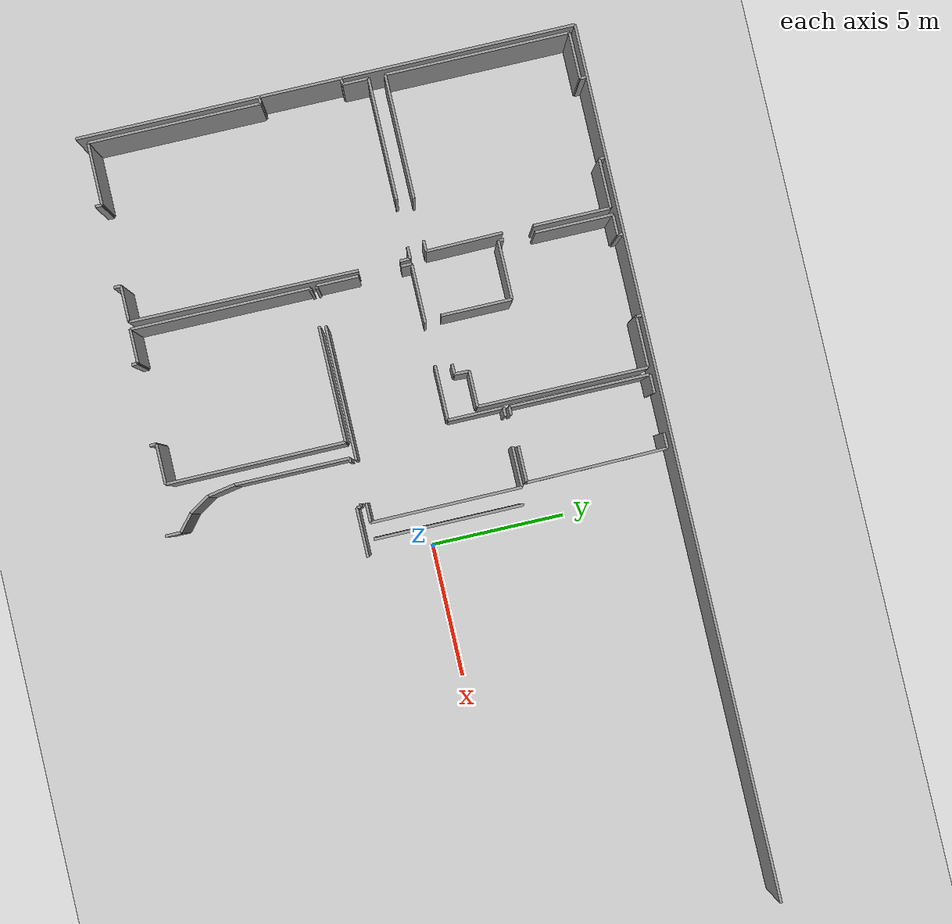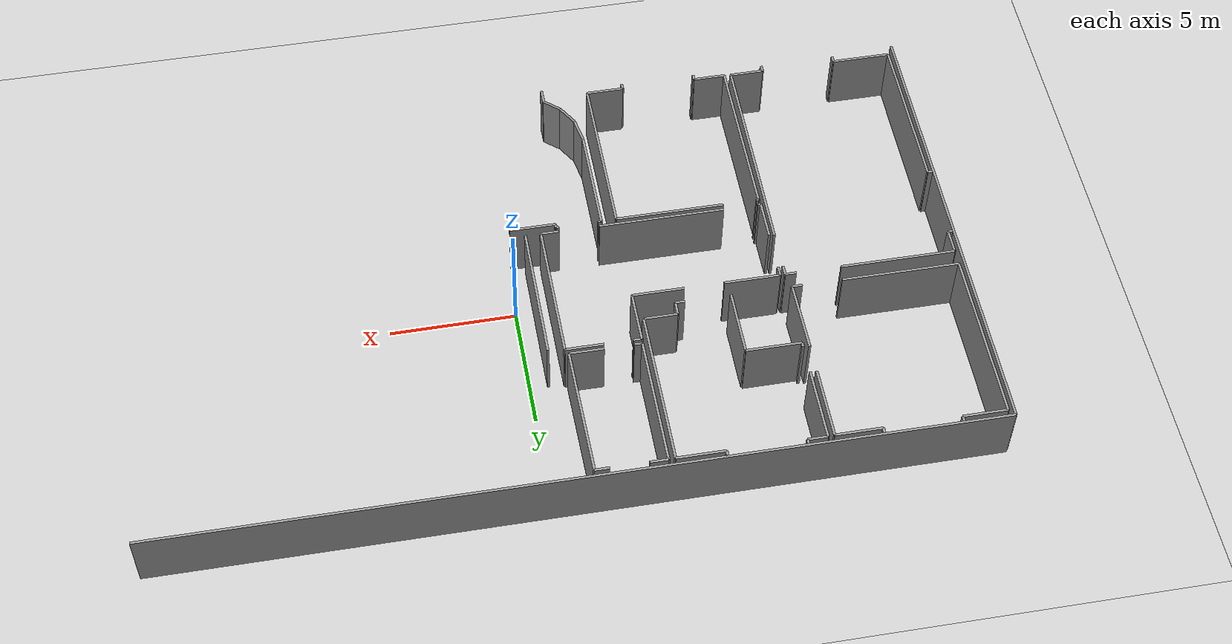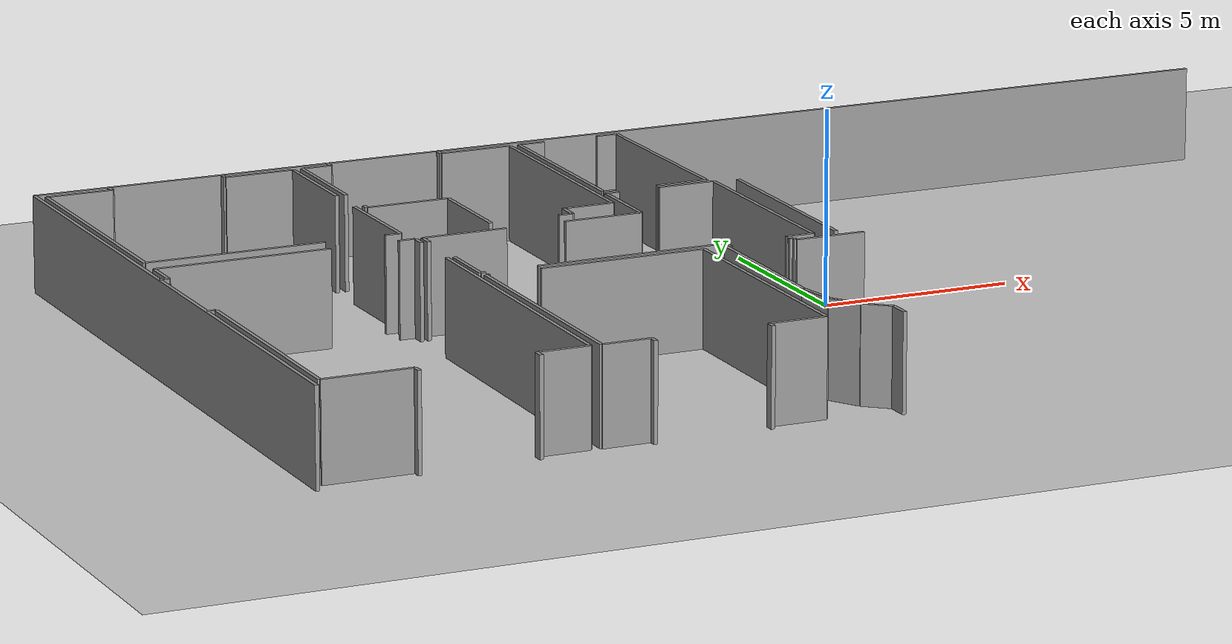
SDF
<sdf version="1.6">
 <world name="default">
  <model name="ground_plane">
   <static>1</static>
   <link name="link">
    <collision name="collision">
     <geometry><plane><normal>0 0 1</normal><size>100 100</size></plane></geometry>
     <surface><friction><ode><mu>100</mu><mu2>50</mu2></ode></friction></surface>
    </collision>
    <visual name="visual">
     <cast_shadows>0</cast_shadows>
     <geometry><plane><normal>0 0 1</normal><size>100 100</size></plane></geometry>
     <material>
      <script><uri>file://media/materials/scripts/gazebo.material</uri><name>Gazebo/Grey</name></script>
     </material>
    </visual>
   </link>
  </model>
  <model name="0510034861_A-40">
   <static>1</static>
   <link name="Wall_0">
    <collision name="Wall_0_Collision">
     <geometry><box><size>0.40639932986 0.1 2.5</size></box></geometry>
     <pose>0.20319966493 0 1.25 0 0 0</pose>
    </collision>
    <visual name="Wall_0_Visual">
     <pose>0.20319966493 0 1.25 0 0 0</pose>
     <geometry><box><size>0.40639932986 0.1 2.5</size></box></geometry>
     <material>
      <script><uri>file://media/materials/scripts/gazebo.material</uri><name>Gazebo/Grey</name></script>
      <ambient>1 1 1 1</ambient>
     </material>
    </visual>
    <pose>6.86106651267 -7.14993749167 0 0 0 3.14159265359</pose>
   </link>
   <link name="Wall_1">
    <collision name="Wall_1_Collision">
     <geometry><box><size>4.65658495104 0.1 2.5</size></box></geometry>
     <pose>2.32829247552 0 1.25 0 0 0</pose>
    </collision>
    <visual name="Wall_1_Visual">
     <pose>2.32829247552 0 1.25 0 0 0</pose>
     <geometry><box><size>4.65658495104 0.1 2.5</size></box></geometry>
     <material>
      <script><uri>file://media/materials/scripts/gazebo.material</uri><name>Gazebo/Grey</name></script>
      <ambient>1 1 1 1</ambient>
     </material>
    </visual>
    <pose>4.88224953833 -7.14993749167 0 0 0 3.14159265359</pose>
   </link>
   <link name="Wall_2">
    <collision name="Wall_2_Collision">
     <geometry><box><size>6.88949669689 0.1 2.5</size></box></geometry>
     <pose>3.44474834845 0 1.25 0 0 0</pose>
    </collision>
    <visual name="Wall_2_Visual">
     <pose>3.44474834845 0 1.25 0 0 0</pose>
     <geometry><box><size>6.88949669689 0.1 2.5</size></box></geometry>
     <material>
      <script><uri>file://media/materials/scripts/gazebo.material</uri><name>Gazebo/Grey</name></script>
      <ambient>1 1 1 1</ambient>
     </material>
    </visual>
    <pose>0.225664587286 -7.14993749167 0 0 0 1.57079632679</pose>
   </link>
   <link name="Wall_3">
    <collision name="Wall_3_Collision">
     <geometry><box><size>1.7336066354 0.1 2.5</size></box></geometry>
     <pose>0.866803317701 0 1.25 0 0 0</pose>
    </collision>
    <visual name="Wall_3_Visual">
     <pose>0.866803317701 0 1.25 0 0 0</pose>
     <geometry><box><size>1.7336066354 0.1 2.5</size></box></geometry>
     <material>
      <script><uri>file://media/materials/scripts/gazebo.material</uri><name>Gazebo/Grey</name></script>
      <ambient>1 1 1 1</ambient>
     </material>
    </visual>
    <pose>0.225664587286 -0.260440794776 0 0 0 0.0</pose>
   </link>
   <link name="Wall_4">
    <collision name="Wall_4_Collision">
     <geometry><box><size>0.222110814258 0.1 2.5</size></box></geometry>
     <pose>0.111055407129 0 1.25 0 0 0</pose>
    </collision>
    <visual name="Wall_4_Visual">
     <pose>0.111055407129 0 1.25 0 0 0</pose>
     <geometry><box><size>0.222110814258 0.1 2.5</size></box></geometry>
     <material>
      <script><uri>file://media/materials/scripts/gazebo.material</uri><name>Gazebo/Grey</name></script>
      <ambient>1 1 1 1</ambient>
     </material>
    </visual>
    <pose>1.95927122269 -0.260440794776 0 0 0 1.57079632679</pose>
   </link>
   <link name="Wall_5">
    <collision name="Wall_5_Collision">
     <geometry><box><size>0.214114824945 0.1 2.5</size></box></geometry>
     <pose>0.107057412472 0 1.25 0 0 0</pose>
    </collision>
    <visual name="Wall_5_Visual">
     <pose>0.107057412472 0 1.25 0 0 0</pose>
     <geometry><box><size>0.214114824945 0.1 2.5</size></box></geometry>
     <material>
      <script><uri>file://media/materials/scripts/gazebo.material</uri><name>Gazebo/Grey</name></script>
      <ambient>1 1 1 1</ambient>
     </material>
    </visual>
    <pose>4.98937041103 -0.0383299805177 0 0 0 -1.57079632679</pose>
   </link>
   <link name="Wall_6">
    <collision name="Wall_6_Collision">
     <geometry><box><size>1.8381890988 0.1 2.5</size></box></geometry>
     <pose>0.919094549401 0 1.25 0 0 0</pose>
    </collision>
    <visual name="Wall_6_Visual">
     <pose>0.919094549401 0 1.25 0 0 0</pose>
     <geometry><box><size>1.8381890988 0.1 2.5</size></box></geometry>
     <material>
      <script><uri>file://media/materials/scripts/gazebo.material</uri><name>Gazebo/Grey</name></script>
      <ambient>1 1 1 1</ambient>
     </material>
    </visual>
    <pose>4.98937041103 -0.252444805463 0 0 0 0.0</pose>
   </link>
   <link name="Wall_7">
    <collision name="Wall_7_Collision">
     <geometry><box><size>2.89162896071 0.1 2.5</size></box></geometry>
     <pose>1.44581448036 0 1.25 0 0 0</pose>
    </collision>
    <visual name="Wall_7_Visual">
     <pose>1.44581448036 0 1.25 0 0 0</pose>
     <geometry><box><size>2.89162896071 0.1 2.5</size></box></geometry>
     <material>
      <script><uri>file://media/materials/scripts/gazebo.material</uri><name>Gazebo/Grey</name></script>
      <ambient>1 1 1 1</ambient>
     </material>
    </visual>
    <pose>6.82755950983 -0.252444805463 0 0 0 -1.57079632679</pose>
   </link>
   <link name="Wall_8">
    <collision name="Wall_8_Collision">
     <geometry><box><size>2.85869909492 0.1 2.5</size></box></geometry>
     <pose>1.42934954746 0 1.25 0 0 0</pose>
    </collision>
    <visual name="Wall_8_Visual">
     <pose>1.42934954746 0 1.25 0 0 0</pose>
     <geometry><box><size>2.85869909492 0.1 2.5</size></box></geometry>
     <material>
      <script><uri>file://media/materials/scripts/gazebo.material</uri><name>Gazebo/Grey</name></script>
      <ambient>1 1 1 1</ambient>
     </material>
    </visual>
    <pose>6.82755950983 -4.2914347724 0 0 0 -1.55907499167</pose>
   </link>
   <link name="Wall_9">
    <collision name="Wall_9_Collision">
     <geometry><box><size>0.364134814918 0.1 2.5</size></box></geometry>
     <pose>0.182067407459 0 1.25 0 0 0</pose>
    </collision>
    <visual name="Wall_9_Visual">
     <pose>0.182067407459 0 1.25 0 0 0</pose>
     <geometry><box><size>0.364134814918 0.1 2.5</size></box></geometry>
     <material>
      <script><uri>file://media/materials/scripts/gazebo.material</uri><name>Gazebo/Grey</name></script>
      <ambient>1 1 1 1</ambient>
     </material>
    </visual>
    <pose>11.4422607073 -7.14993749167 0 0 0 3.14159265359</pose>
   </link>
   <link name="Wall_10">
    <collision name="Wall_10_Collision">
     <geometry><box><size>2.64603786037 0.1 2.5</size></box></geometry>
     <pose>1.32301893019 0 1.25 0 0 0</pose>
    </collision>
    <visual name="Wall_10_Visual">
     <pose>1.32301893019 0 1.25 0 0 0</pose>
     <geometry><box><size>2.64603786037 0.1 2.5</size></box></geometry>
     <material>
      <script><uri>file://media/materials/scripts/gazebo.material</uri><name>Gazebo/Grey</name></script>
      <ambient>1 1 1 1</ambient>
     </material>
    </visual>
    <pose>9.26278247736 -7.14993749167 0 0 0 1.57079632679</pose>
   </link>
   <link name="Wall_11">
    <collision name="Wall_11_Collision">
     <geometry><box><size>2.18569733277 0.1 2.5</size></box></geometry>
     <pose>1.09284866638 0 1.25 0 0 0</pose>
    </collision>
    <visual name="Wall_11_Visual">
     <pose>1.09284866638 0 1.25 0 0 0</pose>
     <geometry><box><size>2.18569733277 0.1 2.5</size></box></geometry>
     <material>
      <script><uri>file://media/materials/scripts/gazebo.material</uri><name>Gazebo/Grey</name></script>
      <ambient>1 1 1 1</ambient>
     </material>
    </visual>
    <pose>9.26278247736 -4.5038996313 0 0 0 3.14159265359</pose>
   </link>
   <link name="Wall_12">
    <collision name="Wall_12_Collision">
     <geometry><box><size>0.195584437013 0.1 2.5</size></box></geometry>
     <pose>0.0977922185063 0 1.25 0 0 0</pose>
    </collision>
    <visual name="Wall_12_Visual">
     <pose>0.0977922185063 0 1.25 0 0 0</pose>
     <geometry><box><size>0.195584437013 0.1 2.5</size></box></geometry>
     <material>
      <script><uri>file://media/materials/scripts/gazebo.material</uri><name>Gazebo/Grey</name></script>
      <ambient>1 1 1 1</ambient>
     </material>
    </visual>
    <pose>7.07708514459 -4.5038996313 0 0 0 1.57079632679</pose>
   </link>
   <link name="Wall_13">
    <collision name="Wall_13_Collision">
     <geometry><box><size>2.91092087144 0.1 2.5</size></box></geometry>
     <pose>1.45546043572 0 1.25 0 0 0</pose>
    </collision>
    <visual name="Wall_13_Visual">
     <pose>1.45546043572 0 1.25 0 0 0</pose>
     <geometry><box><size>2.91092087144 0.1 2.5</size></box></geometry>
     <material>
      <script><uri>file://media/materials/scripts/gazebo.material</uri><name>Gazebo/Grey</name></script>
      <ambient>1 1 1 1</ambient>
     </material>
    </visual>
    <pose>7.07708514459 -3.1414084364 0 0 0 1.57079632679</pose>
   </link>
   <link name="Wall_14">
    <collision name="Wall_14_Collision">
     <geometry><box><size>0.771041826639 0.1 2.5</size></box></geometry>
     <pose>0.38552091332 0 1.25 0 0 0</pose>
    </collision>
    <visual name="Wall_14_Visual">
     <pose>0.38552091332 0 1.25 0 0 0</pose>
     <geometry><box><size>0.771041826639 0.1 2.5</size></box></geometry>
     <material>
      <script><uri>file://media/materials/scripts/gazebo.material</uri><name>Gazebo/Grey</name></script>
      <ambient>1 1 1 1</ambient>
     </material>
    </visual>
    <pose>7.07708514459 -0.230487564967 0 0 0 0.0</pose>
   </link>
   <link name="Wall_15">
    <collision name="Wall_15_Collision">
     <geometry><box><size>0.230487564967 0.1 2.5</size></box></geometry>
     <pose>0.115243782484 0 1.25 0 0 0</pose>
    </collision>
    <visual name="Wall_15_Visual">
     <pose>0.115243782484 0 1.25 0 0 0</pose>
     <geometry><box><size>0.230487564967 0.1 2.5</size></box></geometry>
     <material>
      <script><uri>file://media/materials/scripts/gazebo.material</uri><name>Gazebo/Grey</name></script>
      <ambient>1 1 1 1</ambient>
     </material>
    </visual>
    <pose>7.84812697123 -0.230487564967 0 0 0 1.57079632679</pose>
   </link>
   <link name="Wall_16">
    <collision name="Wall_16_Collision">
     <geometry><box><size>0.248129509643 0.1 2.5</size></box></geometry>
     <pose>0.124064754821 0 1.25 0 0 0</pose>
    </collision>
    <visual name="Wall_16_Visual">
     <pose>0.124064754821 0 1.25 0 0 0</pose>
     <geometry><box><size>0.248129509643 0.1 2.5</size></box></geometry>
     <material>
      <script><uri>file://media/materials/scripts/gazebo.material</uri><name>Gazebo/Grey</name></script>
      <ambient>1 1 1 1</ambient>
     </material>
    </visual>
    <pose>10.8825414554 -0.0 0 0 0 -1.57079632679</pose>
   </link>
   <link name="Wall_17">
    <collision name="Wall_17_Collision">
     <geometry><box><size>1.90380697936 0.1 2.5</size></box></geometry>
     <pose>0.951903489678 0 1.25 0 0 0</pose>
    </collision>
    <visual name="Wall_17_Visual">
     <pose>0.951903489678 0 1.25 0 0 0</pose>
     <geometry><box><size>1.90380697936 0.1 2.5</size></box></geometry>
     <material>
      <script><uri>file://media/materials/scripts/gazebo.material</uri><name>Gazebo/Grey</name></script>
      <ambient>1 1 1 1</ambient>
     </material>
    </visual>
    <pose>10.8825414554 -0.248129509643 0 0 0 0.0</pose>
   </link>
   <link name="Wall_18">
    <collision name="Wall_18_Collision">
     <geometry><box><size>6.35541537895 0.1 2.5</size></box></geometry>
     <pose>3.17770768948 0 1.25 0 0 0</pose>
    </collision>
    <visual name="Wall_18_Visual">
     <pose>3.17770768948 0 1.25 0 0 0</pose>
     <geometry><box><size>6.35541537895 0.1 2.5</size></box></geometry>
     <material>
      <script><uri>file://media/materials/scripts/gazebo.material</uri><name>Gazebo/Grey</name></script>
      <ambient>1 1 1 1</ambient>
     </material>
    </visual>
    <pose>12.7863484348 -0.248129509643 0 0 0 -1.57079632679</pose>
   </link>
   <link name="Wall_19">
    <collision name="Wall_19_Collision">
     <geometry><box><size>1.32644578275 0.1 2.5</size></box></geometry>
     <pose>0.663222891375 0 1.25 0 0 0</pose>
    </collision>
    <visual name="Wall_19_Visual">
     <pose>0.663222891375 0 1.25 0 0 0</pose>
     <geometry><box><size>1.32644578275 0.1 2.5</size></box></geometry>
     <material>
      <script><uri>file://media/materials/scripts/gazebo.material</uri><name>Gazebo/Grey</name></script>
      <ambient>1 1 1 1</ambient>
     </material>
    </visual>
    <pose>12.7863484348 -6.6035448886 0 0 0 3.14159265359</pose>
   </link>
   <link name="Wall_20">
    <collision name="Wall_20_Collision">
     <geometry><box><size>0.546677340766 0.1 2.5</size></box></geometry>
     <pose>0.273338670383 0 1.25 0 0 0</pose>
    </collision>
    <visual name="Wall_20_Visual">
     <pose>0.273338670383 0 1.25 0 0 0</pose>
     <geometry><box><size>0.546677340766 0.1 2.5</size></box></geometry>
     <material>
      <script><uri>file://media/materials/scripts/gazebo.material</uri><name>Gazebo/Grey</name></script>
      <ambient>1 1 1 1</ambient>
     </material>
    </visual>
    <pose>11.459902652 -6.6035448886 0 0 0 -1.60307315069</pose>
   </link>
   <link name="Wall_21">
    <collision name="Wall_21_Collision">
     <geometry><box><size>1.3555105693 0.1 2.5</size></box></geometry>
     <pose>0.677755284651 0 1.25 0 0 0</pose>
    </collision>
    <visual name="Wall_21_Visual">
     <pose>0.677755284651 0 1.25 0 0 0</pose>
     <geometry><box><size>1.3555105693 0.1 2.5</size></box></geometry>
     <material>
      <script><uri>file://media/materials/scripts/gazebo.material</uri><name>Gazebo/Grey</name></script>
      <ambient>1 1 1 1</ambient>
     </material>
    </visual>
    <pose>15.8645504794 -5.48499482799 0 0 0 3.14159265359</pose>
   </link>
   <link name="Wall_22">
    <collision name="Wall_22_Collision">
     <geometry><box><size>0.316793481365 0.1 2.5</size></box></geometry>
     <pose>0.158396740682 0 1.25 0 0 0</pose>
    </collision>
    <visual name="Wall_22_Visual">
     <pose>0.158396740682 0 1.25 0 0 0</pose>
     <geometry><box><size>0.316793481365 0.1 2.5</size></box></geometry>
     <material>
      <script><uri>file://media/materials/scripts/gazebo.material</uri><name>Gazebo/Grey</name></script>
      <ambient>1 1 1 1</ambient>
     </material>
    </visual>
    <pose>13.3590135741 -5.48499482799 0 0 0 3.14159265359</pose>
   </link>
   <link name="Wall_23">
    <collision name="Wall_23_Collision">
     <geometry><box><size>5.2447343872 0.1 2.5</size></box></geometry>
     <pose>2.6223671936 0 1.25 0 0 0</pose>
    </collision>
    <visual name="Wall_23_Visual">
     <pose>2.6223671936 0 1.25 0 0 0</pose>
     <geometry><box><size>5.2447343872 0.1 2.5</size></box></geometry>
     <material>
      <script><uri>file://media/materials/scripts/gazebo.material</uri><name>Gazebo/Grey</name></script>
      <ambient>1 1 1 1</ambient>
     </material>
    </visual>
    <pose>13.0422200928 -5.48499482799 0 0 0 1.57079632679</pose>
   </link>
   <link name="Wall_24">
    <collision name="Wall_24_Collision">
     <geometry><box><size>0.703266298174 0.1 2.5</size></box></geometry>
     <pose>0.351633149087 0 1.25 0 0 0</pose>
    </collision>
    <visual name="Wall_24_Visual">
     <pose>0.351633149087 0 1.25 0 0 0</pose>
     <geometry><box><size>0.703266298174 0.1 2.5</size></box></geometry>
     <material>
      <script><uri>file://media/materials/scripts/gazebo.material</uri><name>Gazebo/Grey</name></script>
      <ambient>1 1 1 1</ambient>
     </material>
    </visual>
    <pose>13.0422200928 -0.240260440795 0 0 0 0.0</pose>
   </link>
   <link name="Wall_25">
    <collision name="Wall_25_Collision">
     <geometry><box><size>0.572538218925 0.1 2.5</size></box></geometry>
     <pose>0.286269109463 0 1.25 0 0 0</pose>
    </collision>
    <visual name="Wall_25_Visual">
     <pose>0.286269109463 0 1.25 0 0 0</pose>
     <geometry><box><size>0.572538218925 0.1 2.5</size></box></geometry>
     <material>
      <script><uri>file://media/materials/scripts/gazebo.material</uri><name>Gazebo/Grey</name></script>
      <ambient>1 1 1 1</ambient>
     </material>
    </visual>
    <pose>15.2197945158 -0.240260440795 0 0 0 0.0</pose>
   </link>
   <link name="Wall_26">
    <collision name="Wall_26_Collision">
     <geometry><box><size>5.24523156733 0.1 2.5</size></box></geometry>
     <pose>2.62261578366 0 1.25 0 0 0</pose>
    </collision>
    <visual name="Wall_26_Visual">
     <pose>2.62261578366 0 1.25 0 0 0</pose>
     <geometry><box><size>5.24523156733 0.1 2.5</size></box></geometry>
     <material>
      <script><uri>file://media/materials/scripts/gazebo.material</uri><name>Gazebo/Grey</name></script>
      <ambient>1 1 1 1</ambient>
     </material>
    </visual>
    <pose>15.7923327347 -0.240260440795 0 0 0 -1.55702762551</pose>
   </link>
   <link name="Wall_27">
    <collision name="Wall_27_Collision">
     <geometry><box><size>1.34078779533 0.1 2.5</size></box></geometry>
     <pose>0.670393897664 0 1.25 0 0 0</pose>
    </collision>
    <visual name="Wall_27_Visual">
     <pose>0.670393897664 0 1.25 0 0 0</pose>
     <geometry><box><size>1.34078779533 0.1 2.5</size></box></geometry>
     <material>
      <script><uri>file://media/materials/scripts/gazebo.material</uri><name>Gazebo/Grey</name></script>
      <ambient>1 1 1 1</ambient>
     </material>
    </visual>
    <pose>6.9447070993 -18.2281903045 0 0 0 3.14159265359</pose>
   </link>
   <link name="Wall_28">
    <collision name="Wall_28_Collision">
     <geometry><box><size>0.268817545485 0.1 2.5</size></box></geometry>
     <pose>0.134408772743 0 1.25 0 0 0</pose>
    </collision>
    <visual name="Wall_28_Visual">
     <pose>0.134408772743 0 1.25 0 0 0</pose>
     <geometry><box><size>0.268817545485 0.1 2.5</size></box></geometry>
     <material>
      <script><uri>file://media/materials/scripts/gazebo.material</uri><name>Gazebo/Grey</name></script>
      <ambient>1 1 1 1</ambient>
     </material>
    </visual>
    <pose>5.60391930397 -18.2281903045 0 0 0 -1.57079632679</pose>
   </link>
   <link name="Wall_29">
    <collision name="Wall_29_Collision">
     <geometry><box><size>0.24686030499 0.1 2.5</size></box></geometry>
     <pose>0.123430152495 0 1.25 0 0 0</pose>
    </collision>
    <visual name="Wall_29_Visual">
     <pose>0.123430152495 0 1.25 0 0 0</pose>
     <geometry><box><size>0.24686030499 0.1 2.5</size></box></geometry>
     <material>
      <script><uri>file://media/materials/scripts/gazebo.material</uri><name>Gazebo/Grey</name></script>
      <ambient>1 1 1 1</ambient>
     </material>
    </visual>
    <pose>2.57508932028 -18.49700785 0 0 0 1.57079632679</pose>
   </link>
   <link name="Wall_30">
    <collision name="Wall_30_Collision">
     <geometry><box><size>2.33749420925 0.1 2.5</size></box></geometry>
     <pose>1.16874710463 0 1.25 0 0 0</pose>
    </collision>
    <visual name="Wall_30_Visual">
     <pose>1.16874710463 0 1.25 0 0 0</pose>
     <geometry><box><size>2.33749420925 0.1 2.5</size></box></geometry>
     <material>
      <script><uri>file://media/materials/scripts/gazebo.material</uri><name>Gazebo/Grey</name></script>
      <ambient>1 1 1 1</ambient>
     </material>
    </visual>
    <pose>2.57508932028 -18.250147545 0 0 0 3.14159265359</pose>
   </link>
   <link name="Wall_31">
    <collision name="Wall_31_Collision">
     <geometry><box><size>6.43689831767 0.1 2.5</size></box></geometry>
     <pose>3.21844915883 0 1.25 0 0 0</pose>
    </collision>
    <visual name="Wall_31_Visual">
     <pose>3.21844915883 0 1.25 0 0 0</pose>
     <geometry><box><size>6.43689831767 0.1 2.5</size></box></geometry>
     <material>
      <script><uri>file://media/materials/scripts/gazebo.material</uri><name>Gazebo/Grey</name></script>
      <ambient>1 1 1 1</ambient>
     </material>
    </visual>
    <pose>0.237595111024 -18.250147545 0 0 0 1.57079632679</pose>
   </link>
   <link name="Wall_32">
    <collision name="Wall_32_Collision">
     <geometry><box><size>0.237595111024 0.1 2.5</size></box></geometry>
     <pose>0.118797555512 0 1.25 0 0 0</pose>
    </collision>
    <visual name="Wall_32_Visual">
     <pose>0.118797555512 0 1.25 0 0 0</pose>
     <geometry><box><size>0.237595111024 0.1 2.5</size></box></geometry>
     <material>
      <script><uri>file://media/materials/scripts/gazebo.material</uri><name>Gazebo/Grey</name></script>
      <ambient>1 1 1 1</ambient>
     </material>
    </visual>
    <pose>0.237595111024 -11.8132492274 0 0 0 3.14159265359</pose>
   </link>
   <link name="Wall_33">
    <collision name="Wall_33_Collision">
     <geometry><box><size>0.224903064495 0.1 2.5</size></box></geometry>
     <pose>0.112451532247 0 1.25 0 0 0</pose>
    </collision>
    <visual name="Wall_33_Visual">
     <pose>0.112451532247 0 1.25 0 0 0</pose>
     <geometry><box><size>0.224903064495 0.1 2.5</size></box></geometry>
     <material>
      <script><uri>file://media/materials/scripts/gazebo.material</uri><name>Gazebo/Grey</name></script>
      <ambient>1 1 1 1</ambient>
     </material>
    </visual>
    <pose>0.0 -8.74355085386 0 0 0 0.0</pose>
   </link>
   <link name="Wall_34">
    <collision name="Wall_34_Collision">
     <geometry><box><size>0.97233768459 0.1 2.5</size></box></geometry>
     <pose>0.486168842295 0 1.25 0 0 0</pose>
    </collision>
    <visual name="Wall_34_Visual">
     <pose>0.486168842295 0 1.25 0 0 0</pose>
     <geometry><box><size>0.97233768459 0.1 2.5</size></box></geometry>
     <material>
      <script><uri>file://media/materials/scripts/gazebo.material</uri><name>Gazebo/Grey</name></script>
      <ambient>1 1 1 1</ambient>
     </material>
    </visual>
    <pose>0.224903064495 -8.74355085386 0 0 0 1.57079632679</pose>
   </link>
   <link name="Wall_35">
    <collision name="Wall_35_Collision">
     <geometry><box><size>4.55022560113 0.1 2.5</size></box></geometry>
     <pose>2.27511280056 0 1.25 0 0 0</pose>
    </collision>
    <visual name="Wall_35_Visual">
     <pose>2.27511280056 0 1.25 0 0 0</pose>
     <geometry><box><size>4.55022560113 0.1 2.5</size></box></geometry>
     <material>
      <script><uri>file://media/materials/scripts/gazebo.material</uri><name>Gazebo/Grey</name></script>
      <ambient>1 1 1 1</ambient>
     </material>
    </visual>
    <pose>0.224903064495 -7.77121316927 0 0 0 0.0</pose>
   </link>
   <link name="Wall_36">
    <collision name="Wall_36_Collision">
     <geometry><box><size>0.44142937828 0.1 2.5</size></box></geometry>
     <pose>0.22071468914 0 1.25 0 0 0</pose>
    </collision>
    <visual name="Wall_36_Visual">
     <pose>0.22071468914 0 1.25 0 0 0</pose>
     <geometry><box><size>0.44142937828 0.1 2.5</size></box></geometry>
     <material>
      <script><uri>file://media/materials/scripts/gazebo.material</uri><name>Gazebo/Grey</name></script>
      <ambient>1 1 1 1</ambient>
     </material>
    </visual>
    <pose>6.55468050946 -7.77121316927 0 0 0 0.0</pose>
   </link>
   <link name="Wall_37">
    <collision name="Wall_37_Collision">
     <geometry><box><size>0.39129579449 0.1 2.5</size></box></geometry>
     <pose>0.195647897245 0 1.25 0 0 0</pose>
    </collision>
    <visual name="Wall_37_Visual">
     <pose>0.195647897245 0 1.25 0 0 0</pose>
     <geometry><box><size>0.39129579449 0.1 2.5</size></box></geometry>
     <material>
      <script><uri>file://media/materials/scripts/gazebo.material</uri><name>Gazebo/Grey</name></script>
      <ambient>1 1 1 1</ambient>
     </material>
    </visual>
    <pose>6.99610988774 -7.77121316927 0 0 0 -1.57079632679</pose>
   </link>
   <link name="Wall_38">
    <collision name="Wall_38_Collision">
     <geometry><box><size>8.52070664632 0.1 2.5</size></box></geometry>
     <pose>4.26035332316 0 1.25 0 0 0</pose>
    </collision>
    <visual name="Wall_38_Visual">
     <pose>4.26035332316 0 1.25 0 0 0</pose>
     <geometry><box><size>8.52070664632 0.1 2.5</size></box></geometry>
     <material>
      <script><uri>file://media/materials/scripts/gazebo.material</uri><name>Gazebo/Grey</name></script>
      <ambient>1 1 1 1</ambient>
     </material>
    </visual>
    <pose>6.99610988774 -9.7076387082 0 0 0 -1.57682905417</pose>
   </link>
   <link name="Wall_39">
    <collision name="Wall_39_Collision">
     <geometry><box><size>1.48573096669 0.1 2.5</size></box></geometry>
     <pose>0.742865483345 0 1.25 0 0 0</pose>
    </collision>
    <visual name="Wall_39_Visual">
     <pose>0.742865483345 0 1.25 0 0 0</pose>
     <geometry><box><size>1.48573096669 0.1 2.5</size></box></geometry>
     <material>
      <script><uri>file://media/materials/scripts/gazebo.material</uri><name>Gazebo/Grey</name></script>
      <ambient>1 1 1 1</ambient>
     </material>
    </visual>
    <pose>12.9821867127 -18.2354247711 0 0 0 3.14159265359</pose>
   </link>
   <link name="Wall_40">
    <collision name="Wall_40_Collision">
     <geometry><box><size>0.24038736126 0.1 2.5</size></box></geometry>
     <pose>0.12019368063 0 1.25 0 0 0</pose>
    </collision>
    <visual name="Wall_40_Visual">
     <pose>0.12019368063 0 1.25 0 0 0</pose>
     <geometry><box><size>0.24038736126 0.1 2.5</size></box></geometry>
     <material>
      <script><uri>file://media/materials/scripts/gazebo.material</uri><name>Gazebo/Grey</name></script>
      <ambient>1 1 1 1</ambient>
     </material>
    </visual>
    <pose>11.496455746 -18.2354247711 0 0 0 -1.57079632679</pose>
   </link>
   <link name="Wall_41">
    <collision name="Wall_41_Collision">
     <geometry><box><size>0.230868326363 0.1 2.5</size></box></geometry>
     <pose>0.115434163182 0 1.25 0 0 0</pose>
    </collision>
    <visual name="Wall_41_Visual">
     <pose>0.115434163182 0 1.25 0 0 0</pose>
     <geometry><box><size>0.230868326363 0.1 2.5</size></box></geometry>
     <material>
      <script><uri>file://media/materials/scripts/gazebo.material</uri><name>Gazebo/Grey</name></script>
      <ambient>1 1 1 1</ambient>
     </material>
    </visual>
    <pose>8.49097912793 -18.4758121323 0 0 0 1.57079632679</pose>
   </link>
   <link name="Wall_42">
    <collision name="Wall_42_Collision">
     <geometry><box><size>1.2699661757 0.1 2.5</size></box></geometry>
     <pose>0.634983087848 0 1.25 0 0 0</pose>
    </collision>
    <visual name="Wall_42_Visual">
     <pose>0.634983087848 0 1.25 0 0 0</pose>
     <geometry><box><size>1.2699661757 0.1 2.5</size></box></geometry>
     <material>
      <script><uri>file://media/materials/scripts/gazebo.material</uri><name>Gazebo/Grey</name></script>
      <ambient>1 1 1 1</ambient>
     </material>
    </visual>
    <pose>8.49097912793 -18.244943806 0 0 0 3.14159265359</pose>
   </link>
   <link name="Wall_43">
    <collision name="Wall_43_Collision">
     <geometry><box><size>6.69683143058 0.1 2.5</size></box></geometry>
     <pose>3.34841571529 0 1.25 0 0 0</pose>
    </collision>
    <visual name="Wall_43_Visual">
     <pose>3.34841571529 0 1.25 0 0 0</pose>
     <geometry><box><size>6.69683143058 0.1 2.5</size></box></geometry>
     <material>
      <script><uri>file://media/materials/scripts/gazebo.material</uri><name>Gazebo/Grey</name></script>
      <ambient>1 1 1 1</ambient>
     </material>
    </visual>
    <pose>7.22101295223 -18.244943806 0 0 0 1.57079632679</pose>
   </link>
   <link name="Wall_44">
    <collision name="Wall_44_Collision">
     <geometry><box><size>0.100647928975 0.1 2.5</size></box></geometry>
     <pose>0.0503239644877 0 1.25 0 0 0</pose>
    </collision>
    <visual name="Wall_44_Visual">
     <pose>0.0503239644877 0 1.25 0 0 0</pose>
     <geometry><box><size>0.100647928975 0.1 2.5</size></box></geometry>
     <material>
      <script><uri>file://media/materials/scripts/gazebo.material</uri><name>Gazebo/Grey</name></script>
      <ambient>1 1 1 1</ambient>
     </material>
    </visual>
    <pose>7.22101295223 -11.5481123754 0 0 0 0.0</pose>
   </link>
   <link name="Wall_45">
    <collision name="Wall_45_Collision">
     <geometry><box><size>4.31047284219 0.1 2.5</size></box></geometry>
     <pose>2.1552364211 0 1.25 0 0 0</pose>
    </collision>
    <visual name="Wall_45_Visual">
     <pose>2.1552364211 0 1.25 0 0 0</pose>
     <geometry><box><size>4.31047284219 0.1 2.5</size></box></geometry>
     <material>
      <script><uri>file://media/materials/scripts/gazebo.material</uri><name>Gazebo/Grey</name></script>
      <ambient>1 1 1 1</ambient>
     </material>
    </visual>
    <pose>8.65724493746 -11.5481123754 0 0 0 0.0</pose>
   </link>
   <link name="Wall_46">
    <collision name="Wall_46_Collision">
     <geometry><box><size>6.68732804845 0.1 2.5</size></box></geometry>
     <pose>3.34366402422 0 1.25 0 0 0</pose>
    </collision>
    <visual name="Wall_46_Visual">
     <pose>3.34366402422 0 1.25 0 0 0</pose>
     <geometry><box><size>6.68732804845 0.1 2.5</size></box></geometry>
     <material>
      <script><uri>file://media/materials/scripts/gazebo.material</uri><name>Gazebo/Grey</name></script>
      <ambient>1 1 1 1</ambient>
     </material>
    </visual>
    <pose>12.9677177797 -11.5481123754 0 0 0 -1.5686326907</pose>
   </link>
   <link name="Wall_47">
    <collision name="Wall_47_Collision">
     <geometry><box><size>0.725096618204 0.1 2.5</size></box></geometry>
     <pose>0.362548309102 0 1.25 0 0 0</pose>
    </collision>
    <visual name="Wall_47_Visual">
     <pose>0.362548309102 0 1.25 0 0 0</pose>
     <geometry><box><size>0.725096618204 0.1 2.5</size></box></geometry>
     <material>
      <script><uri>file://media/materials/scripts/gazebo.material</uri><name>Gazebo/Grey</name></script>
      <ambient>1 1 1 1</ambient>
     </material>
    </visual>
    <pose>16.0083513666 -11.3125479918 0 0 0 3.14159265359</pose>
   </link>
   <link name="Wall_48">
    <collision name="Wall_48_Collision">
     <geometry><box><size>4.99876252546 0.1 2.5</size></box></geometry>
     <pose>2.49938126273 0 1.25 0 0 0</pose>
    </collision>
    <visual name="Wall_48_Visual">
     <pose>2.49938126273 0 1.25 0 0 0</pose>
     <geometry><box><size>4.99876252546 0.1 2.5</size></box></geometry>
     <material>
      <script><uri>file://media/materials/scripts/gazebo.material</uri><name>Gazebo/Grey</name></script>
      <ambient>1 1 1 1</ambient>
     </material>
    </visual>
    <pose>13.6864683746 -11.3125479918 0 0 0 3.14159265359</pose>
   </link>
   <link name="Wall_49">
    <collision name="Wall_49_Collision">
     <geometry><box><size>0.12476281738 0.1 2.5</size></box></geometry>
     <pose>0.0623814086902 0 1.25 0 0 0</pose>
    </collision>
    <visual name="Wall_49_Visual">
     <pose>0.0623814086902 0 1.25 0 0 0</pose>
     <geometry><box><size>0.12476281738 0.1 2.5</size></box></geometry>
     <material>
      <script><uri>file://media/materials/scripts/gazebo.material</uri><name>Gazebo/Grey</name></script>
      <ambient>1 1 1 1</ambient>
     </material>
    </visual>
    <pose>7.31277644864 -11.3125479918 0 0 0 3.14159265359</pose>
   </link>
   <link name="Wall_50">
    <collision name="Wall_50_Collision">
     <geometry><box><size>1.57609833798 0.1 2.5</size></box></geometry>
     <pose>0.788049168988 0 1.25 0 0 0</pose>
    </collision>
    <visual name="Wall_50_Visual">
     <pose>0.788049168988 0 1.25 0 0 0</pose>
     <geometry><box><size>1.57609833798 0.1 2.5</size></box></geometry>
     <material>
      <script><uri>file://media/materials/scripts/gazebo.material</uri><name>Gazebo/Grey</name></script>
      <ambient>1 1 1 1</ambient>
     </material>
    </visual>
    <pose>7.18801363126 -11.3125479918 0 0 0 1.57079632679</pose>
   </link>
   <link name="Wall_51">
    <collision name="Wall_51_Collision">
     <geometry><box><size>0.399037942873 0.1 2.5</size></box></geometry>
     <pose>0.199518971437 0 1.25 0 0 0</pose>
    </collision>
    <visual name="Wall_51_Visual">
     <pose>0.199518971437 0 1.25 0 0 0</pose>
     <geometry><box><size>0.399037942873 0.1 2.5</size></box></geometry>
     <material>
      <script><uri>file://media/materials/scripts/gazebo.material</uri><name>Gazebo/Grey</name></script>
      <ambient>1 1 1 1</ambient>
     </material>
    </visual>
    <pose>7.18801363126 -8.16301664562 0 0 0 1.57079632679</pose>
   </link>
   <link name="Wall_52">
    <collision name="Wall_52_Collision">
     <geometry><box><size>2.2166659263 0.1 2.5</size></box></geometry>
     <pose>1.10833296315 0 1.25 0 0 0</pose>
    </collision>
    <visual name="Wall_52_Visual">
     <pose>1.10833296315 0 1.25 0 0 0</pose>
     <geometry><box><size>2.2166659263 0.1 2.5</size></box></geometry>
     <material>
      <script><uri>file://media/materials/scripts/gazebo.material</uri><name>Gazebo/Grey</name></script>
      <ambient>1 1 1 1</ambient>
     </material>
    </visual>
    <pose>7.18801363126 -7.76397870275 0 0 0 0.0</pose>
   </link>
   <link name="Wall_53">
    <collision name="Wall_53_Collision">
     <geometry><box><size>2.0473540256 0.1 2.5</size></box></geometry>
     <pose>1.0236770128 0 1.25 0 0 0</pose>
    </collision>
    <visual name="Wall_53_Visual">
     <pose>1.0236770128 0 1.25 0 0 0</pose>
     <geometry><box><size>2.0473540256 0.1 2.5</size></box></geometry>
     <material>
      <script><uri>file://media/materials/scripts/gazebo.material</uri><name>Gazebo/Grey</name></script>
      <ambient>1 1 1 1</ambient>
     </material>
    </visual>
    <pose>10.9783664067 -7.76397870275 0 0 0 0.0</pose>
   </link>
   <link name="Wall_54">
    <collision name="Wall_54_Collision">
     <geometry><box><size>2.07540344843 0.1 2.5</size></box></geometry>
     <pose>1.03770172421 0 1.25 0 0 0</pose>
    </collision>
    <visual name="Wall_54_Visual">
     <pose>1.03770172421 0 1.25 0 0 0</pose>
     <geometry><box><size>2.07540344843 0.1 2.5</size></box></geometry>
     <material>
      <script><uri>file://media/materials/scripts/gazebo.material</uri><name>Gazebo/Grey</name></script>
      <ambient>1 1 1 1</ambient>
     </material>
    </visual>
    <pose>13.0257204323 -7.76397870275 0 0 0 1.57079632679</pose>
   </link>
   <link name="Wall_55">
    <collision name="Wall_55_Collision">
     <geometry><box><size>0.333927744179 0.1 2.5</size></box></geometry>
     <pose>0.16696387209 0 1.25 0 0 0</pose>
    </collision>
    <visual name="Wall_55_Visual">
     <pose>0.16696387209 0 1.25 0 0 0</pose>
     <geometry><box><size>0.333927744179 0.1 2.5</size></box></geometry>
     <material>
      <script><uri>file://media/materials/scripts/gazebo.material</uri><name>Gazebo/Grey</name></script>
      <ambient>1 1 1 1</ambient>
     </material>
    </visual>
    <pose>13.0257204323 -5.68857525432 0 0 0 0.0</pose>
   </link>
   <link name="Wall_56">
    <collision name="Wall_56_Collision">
     <geometry><box><size>1.50933817323 0.1 2.5</size></box></geometry>
     <pose>0.754669086617 0 1.25 0 0 0</pose>
    </collision>
    <visual name="Wall_56_Visual">
     <pose>0.754669086617 0 1.25 0 0 0</pose>
     <geometry><box><size>1.50933817323 0.1 2.5</size></box></geometry>
     <material>
      <script><uri>file://media/materials/scripts/gazebo.material</uri><name>Gazebo/Grey</name></script>
      <ambient>1 1 1 1</ambient>
     </material>
    </visual>
    <pose>14.4771828734 -5.68857525432 0 0 0 0.0</pose>
   </link>
   <link name="Wall_57">
    <collision name="Wall_57_Collision">
     <geometry><box><size>5.62401510621 0.1 2.5</size></box></geometry>
     <pose>2.8120075531 0 1.25 0 0 0</pose>
    </collision>
    <visual name="Wall_57_Visual">
     <pose>2.8120075531 0 1.25 0 0 0</pose>
     <geometry><box><size>5.62401510621 0.1 2.5</size></box></geometry>
     <material>
      <script><uri>file://media/materials/scripts/gazebo.material</uri><name>Gazebo/Grey</name></script>
      <ambient>1 1 1 1</ambient>
     </material>
    </visual>
    <pose>15.9865210466 -5.68857525432 0 0 0 -1.56691469162</pose>
   </link>
   <link name="Wall_58">
    <collision name="Wall_58_Collision">
     <geometry><box><size>0.580788049169 0.1 2.5</size></box></geometry>
     <pose>0.290394024585 0 1.25 0 0 0</pose>
    </collision>
    <visual name="Wall_58_Visual">
     <pose>0.290394024585 0 1.25 0 0 0</pose>
     <geometry><box><size>0.580788049169 0.1 2.5</size></box></geometry>
     <material>
      <script><uri>file://media/materials/scripts/gazebo.material</uri><name>Gazebo/Grey</name></script>
      <ambient>1 1 1 1</ambient>
     </material>
    </visual>
    <pose>14.8183450841 -18.6548969089 0 0 0 1.57079632679</pose>
   </link>
   <link name="Wall_59">
    <collision name="Wall_59_Collision">
     <geometry><box><size>0.786207938643 0.1 2.5</size></box></geometry>
     <pose>0.393103969322 0 1.25 0 0 0</pose>
    </collision>
    <visual name="Wall_59_Visual">
     <pose>0.393103969322 0 1.25 0 0 0</pose>
     <geometry><box><size>0.786207938643 0.1 2.5</size></box></geometry>
     <material>
      <script><uri>file://media/materials/scripts/gazebo.material</uri><name>Gazebo/Grey</name></script>
      <ambient>1 1 1 1</ambient>
     </material>
    </visual>
    <pose>14.8183450841 -18.0741088597 0 0 0 2.44214172109</pose>
   </link>
   <link name="Wall_60">
    <collision name="Wall_60_Collision">
     <geometry><box><size>0.886677498245 0.1 2.5</size></box></geometry>
     <pose>0.443338749123 0 1.25 0 0 0</pose>
    </collision>
    <visual name="Wall_60_Visual">
     <pose>0.443338749123 0 1.25 0 0 0</pose>
     <geometry><box><size>0.886677498245 0.1 2.5</size></box></geometry>
     <material>
      <script><uri>file://media/materials/scripts/gazebo.material</uri><name>Gazebo/Grey</name></script>
      <ambient>1 1 1 1</ambient>
     </material>
    </visual>
    <pose>14.2167420786 -17.5679500441 0 0 0 2.12238566668</pose>
   </link>
   <link name="Wall_61">
    <collision name="Wall_61_Collision">
     <geometry><box><size>1.02539622032 0.1 2.5</size></box></geometry>
     <pose>0.512698110158 0 1.25 0 0 0</pose>
    </collision>
    <visual name="Wall_61_Visual">
     <pose>0.512698110158 0 1.25 0 0 0</pose>
     <geometry><box><size>1.02539622032 0.1 2.5</size></box></geometry>
     <material>
      <script><uri>file://media/materials/scripts/gazebo.material</uri><name>Gazebo/Grey</name></script>
      <ambient>1 1 1 1</ambient>
     </material>
    </visual>
    <pose>13.7520862551 -16.8127732756 0 0 0 1.75389362098</pose>
   </link>
   <link name="Wall_62">
    <collision name="Wall_62_Collision">
     <geometry><box><size>4.27430050959 0.1 2.5</size></box></geometry>
     <pose>2.13715025479 0 1.25 0 0 0</pose>
    </collision>
    <visual name="Wall_62_Visual">
     <pose>2.13715025479 0 1.25 0 0 0</pose>
     <geometry><box><size>4.27430050959 0.1 2.5</size></box></geometry>
     <material>
      <script><uri>file://media/materials/scripts/gazebo.material</uri><name>Gazebo/Grey</name></script>
      <ambient>1 1 1 1</ambient>
     </material>
    </visual>
    <pose>13.5653862507 -15.8045170994 0 0 0 1.57079632679</pose>
   </link>
   <link name="Wall_63">
    <collision name="Wall_63_Collision">
     <geometry><box><size>0.142531682521 0.1 2.5</size></box></geometry>
     <pose>0.0712658412606 0 1.25 0 0 0</pose>
    </collision>
    <visual name="Wall_63_Visual">
     <pose>0.0712658412606 0 1.25 0 0 0</pose>
     <geometry><box><size>0.142531682521 0.1 2.5</size></box></geometry>
     <material>
      <script><uri>file://media/materials/scripts/gazebo.material</uri><name>Gazebo/Grey</name></script>
      <ambient>1 1 1 1</ambient>
     </material>
    </visual>
    <pose>13.5653862507 -11.5302165898 0 0 0 0.0</pose>
   </link>
   <link name="Wall_64">
    <collision name="Wall_64_Collision">
     <geometry><box><size>0.116259146206 0.1 2.5</size></box></geometry>
     <pose>0.058129573103 0 1.25 0 0 0</pose>
    </collision>
    <visual name="Wall_64_Visual">
     <pose>0.058129573103 0 1.25 0 0 0</pose>
     <geometry><box><size>0.116259146206 0.1 2.5</size></box></geometry>
     <material>
      <script><uri>file://media/materials/scripts/gazebo.material</uri><name>Gazebo/Grey</name></script>
      <ambient>1 1 1 1</ambient>
     </material>
    </visual>
    <pose>15.2539361209 -11.5302165898 0 0 0 0.0</pose>
   </link>
   <link name="Wall_65">
    <collision name="Wall_65_Collision">
     <geometry><box><size>0.154335285793 0.1 2.5</size></box></geometry>
     <pose>0.0771676428966 0 1.25 0 0 0</pose>
    </collision>
    <visual name="Wall_65_Visual">
     <pose>0.0771676428966 0 1.25 0 0 0</pose>
     <geometry><box><size>0.154335285793 0.1 2.5</size></box></geometry>
     <material>
      <script><uri>file://media/materials/scripts/gazebo.material</uri><name>Gazebo/Grey</name></script>
      <ambient>1 1 1 1</ambient>
     </material>
    </visual>
    <pose>15.3701952671 -11.5302165898 0 0 0 -1.57079632679</pose>
   </link>
   <link name="Wall_66">
    <collision name="Wall_66_Collision">
     <geometry><box><size>1.83387380298 0.1 2.5</size></box></geometry>
     <pose>0.916936901491 0 1.25 0 0 0</pose>
    </collision>
    <visual name="Wall_66_Visual">
     <pose>0.916936901491 0 1.25 0 0 0</pose>
     <geometry><box><size>1.83387380298 0.1 2.5</size></box></geometry>
     <material>
      <script><uri>file://media/materials/scripts/gazebo.material</uri><name>Gazebo/Grey</name></script>
      <ambient>1 1 1 1</ambient>
     </material>
    </visual>
    <pose>15.3701952671 -11.6845518756 0 0 0 0.0</pose>
   </link>
   <link name="Wall_128">
    <collision name="Wall_128_Collision">
     <geometry><box><size>5.55835485693 0.1 2.5</size></box></geometry>
     <pose>2.77917742846 0 1.25 0 0 0</pose>
    </collision>
    <visual name="Wall_128_Visual">
     <pose>2.77917742846 0 1.25 0 0 0</pose>
     <geometry><box><size>5.55835485693 0.1 2.5</size></box></geometry>
     <material>
      <script><uri>file://media/materials/scripts/gazebo.material</uri><name>Gazebo/Grey</name></script>
      <ambient>1 1 1 1</ambient>
     </material>
    </visual>
    <pose>16.6218848958 -11.3270169248 0 0 0 1.57079632679</pose>
   </link>
   <link name="Wall_138">
    <collision name="Wall_138_Collision">
     <geometry><box><size>18.6548969089 0.1 2.5</size></box></geometry>
     <pose>9.32744845443 0 1.25 0 0 0</pose>
    </collision>
    <visual name="Wall_138_Visual">
     <pose>9.32744845443 0 1.25 0 0 0</pose>
     <geometry><box><size>18.6548969089 0.1 2.5</size></box></geometry>
     <material>
      <script><uri>file://media/materials/scripts/gazebo.material</uri><name>Gazebo/Grey</name></script>
      <ambient>1 1 1 1</ambient>
     </material>
    </visual>
    <pose>0.0 -18.6548969089 0 0 0 1.57079632679</pose>
   </link>
   <link name="Wall_139">
    <collision name="Wall_139_Collision">
     <geometry><box><size>32.6219864322 0.1 2.5</size></box></geometry>
     <pose>16.3109932161 0 1.25 0 0 0</pose>
    </collision>
    <visual name="Wall_139_Visual">
     <pose>16.3109932161 0 1.25 0 0 0</pose>
     <geometry><box><size>32.6219864322 0.1 2.5</size></box></geometry>
     <material>
      <script><uri>file://media/materials/scripts/gazebo.material</uri><name>Gazebo/Grey</name></script>
      <ambient>1 1 1 1</ambient>
     </material>
    </visual>
   </link>
   <pose>-17.35 9.30489690885 0 0 0 0</pose>
  </model>
 </world>
</sdf>
